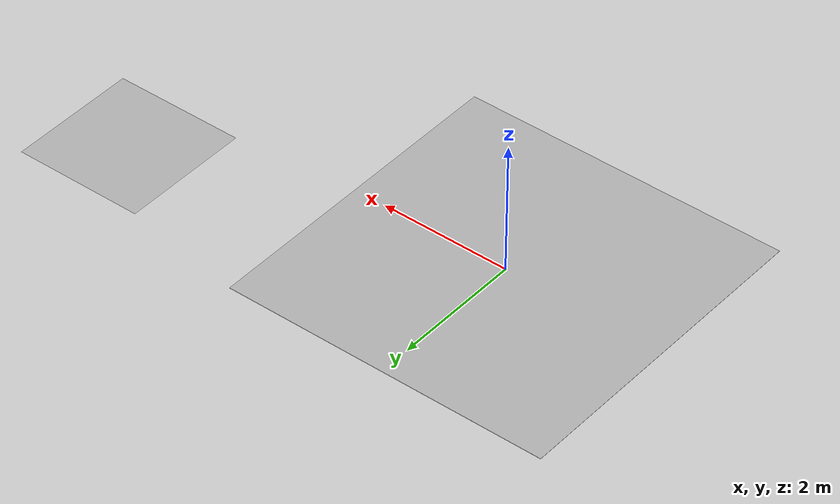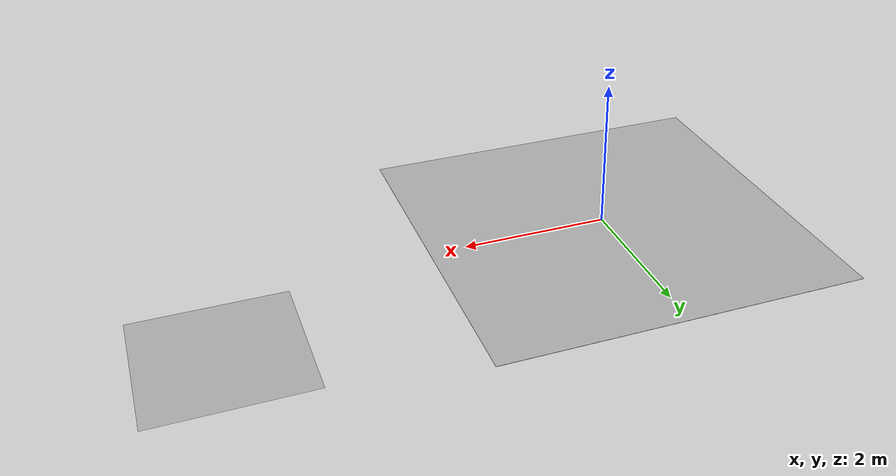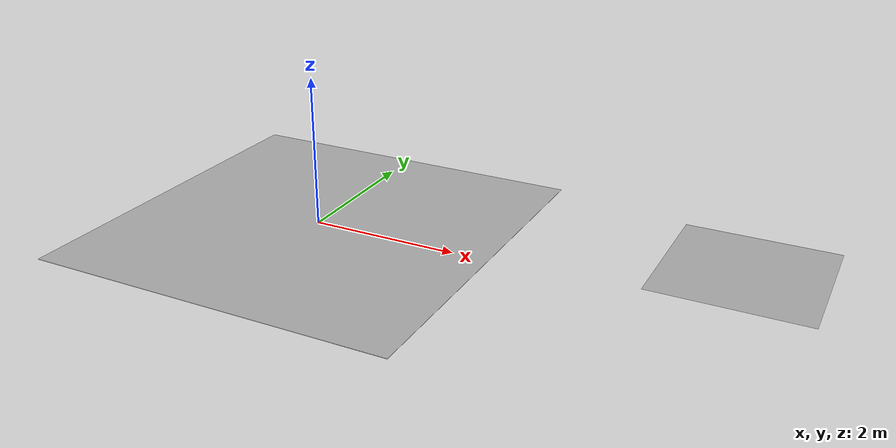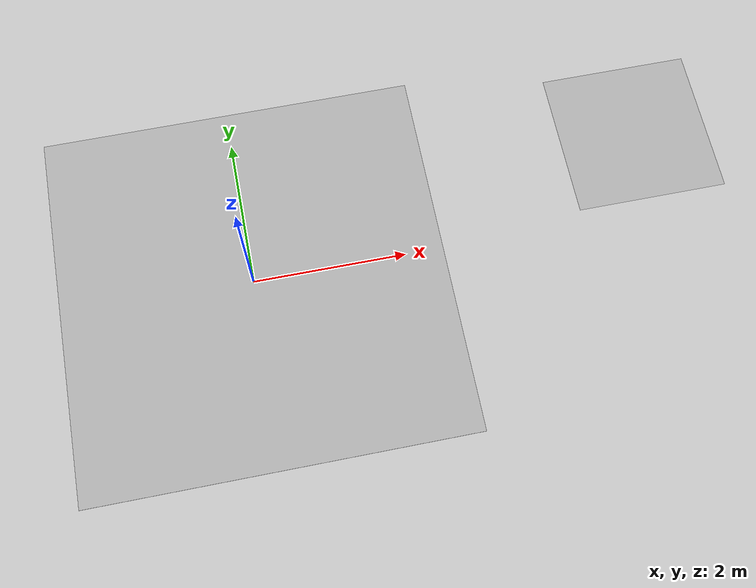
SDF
<sdf version="1.7">
 <world name="default">
  <light name="sun" type="directional">
   <pose>0 0 10 0 -0 0</pose>
   <diffuse>0.8 0.8 0.8 1</diffuse>
   <specular>0.2 0.2 0.2 1</specular>
   <attenuation>
    <range>1000</range>
    <constant>0.9</constant>
    <linear>0.01</linear>
    <quadratic>0.001</quadratic>
   </attenuation>
   <direction>-0.5 0.1 -0.9</direction>
   <spot><inner_angle>0</inner_angle><outer_angle>0</outer_angle><falloff>0</falloff></spot>
  </light>
  <gravity>0 0 -9.8</gravity>
  <magnetic_field>6e-06 2.3e-05 -4.2e-05</magnetic_field>
  <atmosphere type="adiabatic"/>
  <physics type="ode">
   <max_step_size>0.001</max_step_size>
   <real_time_factor>1</real_time_factor>
   <real_time_update_rate>1000</real_time_update_rate>
  </physics>
  <scene><ambient>0.4 0.4 0.4 1</ambient><background>0.7 0.7 0.7 1</background><shadows>1</shadows></scene>
  <spherical_coordinates>
   <surface_model>EARTH_WGS84</surface_model>
   <latitude_deg>0</latitude_deg>
   <longitude_deg>0</longitude_deg>
   <elevation>0</elevation>
   <heading_deg>0</heading_deg>
  </spherical_coordinates>
  <model name="checkerboard_plane">
   <static>1</static>
   <link name="link">
    <visual name="visual">
     <geometry><mesh><uri>model://checkerboard_plane/meshes/checkerboard_plane.dae</uri></mesh></geometry>
    </visual>
   </link>
   <pose>5.39797 1.17238 0 0 -0 0</pose>
  </model>
  <model name="aruco_marker">
   <pose>-0.001081 0.000637 0 0 -0 0</pose>
   <static>0</static>
   <link name="link">
    <gravity>0</gravity>
    <collision name="collision">
     <geometry>
      <plane><normal>0 0 0</normal><size>5 5</size></plane>
      <mesh><uri>model://aruco_marker/materials/textures/aruco.dae</uri></mesh>
     </geometry>
     <surface><friction><ode><mu>100</mu><mu2>50</mu2></ode></friction></surface>
    </collision>
    <visual name="visual">
     <cast_shadows>0</cast_shadows>
     <geometry>
      <plane><normal>0 0 0</normal><size>5 5</size></plane>
      <mesh><uri>model://aruco_marker/materials/textures/aruco.dae</uri></mesh>
     </geometry>
     <material>
      <script>
       <uri>model://aruco_marker/materials/scripts/</uri>
       <uri>model://aruco_marker/materials/textures/</uri>
       <name>ArucoMarker/Image</name>
       <emissive>1 1 1 1</emissive>
      </script>
     </material>
    </visual>
    <inertial>
     <inertia><ixx>1</ixx><ixy>0</ixy><ixz>0</ixz><iyy>1</iyy><iyz>0</iyz><izz>1</izz></inertia>
     <mass>1</mass>
    </inertial>
   </link>
  </model>
 </world>
</sdf>
